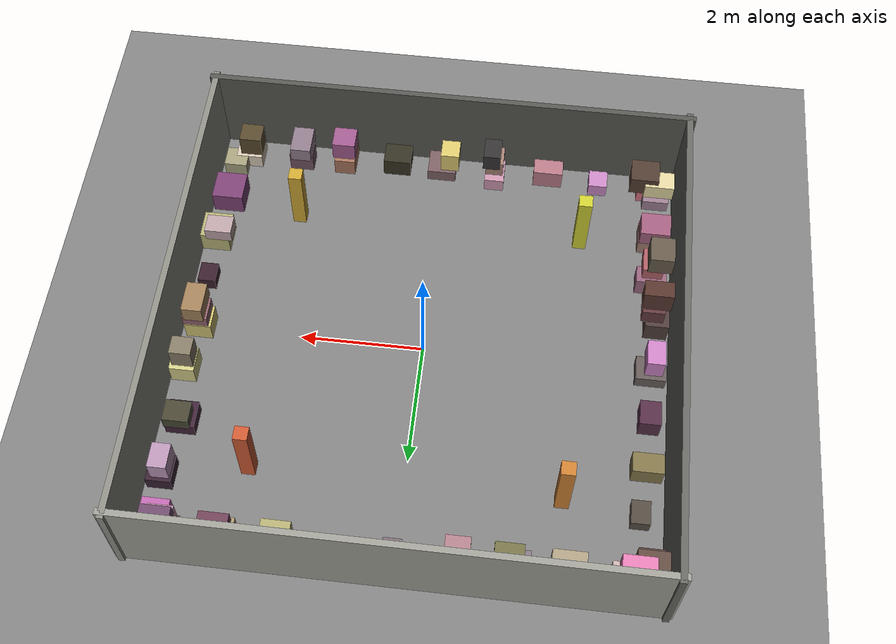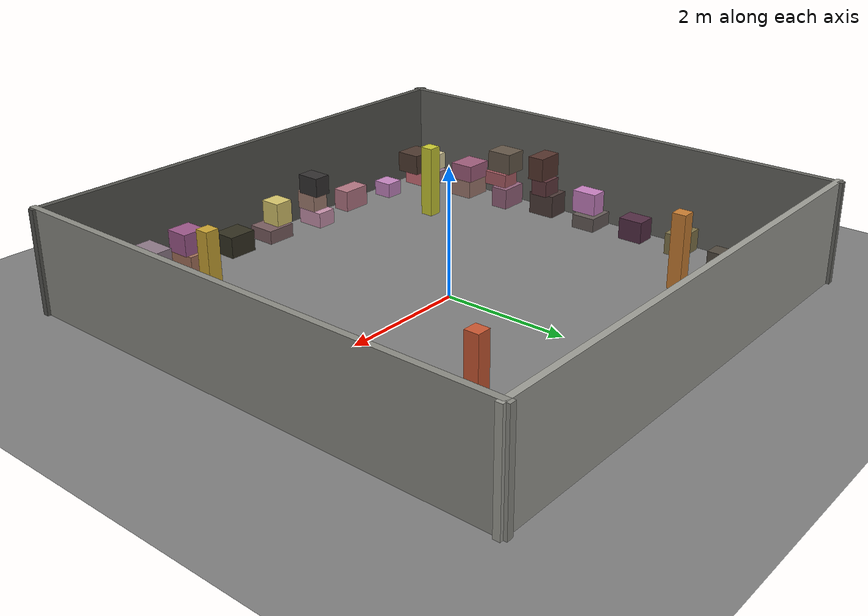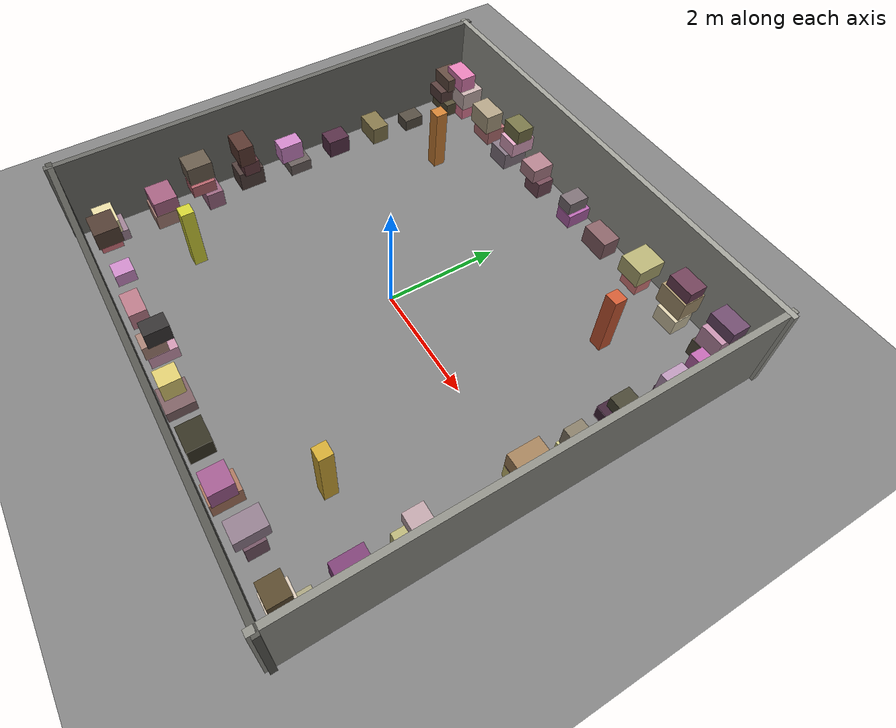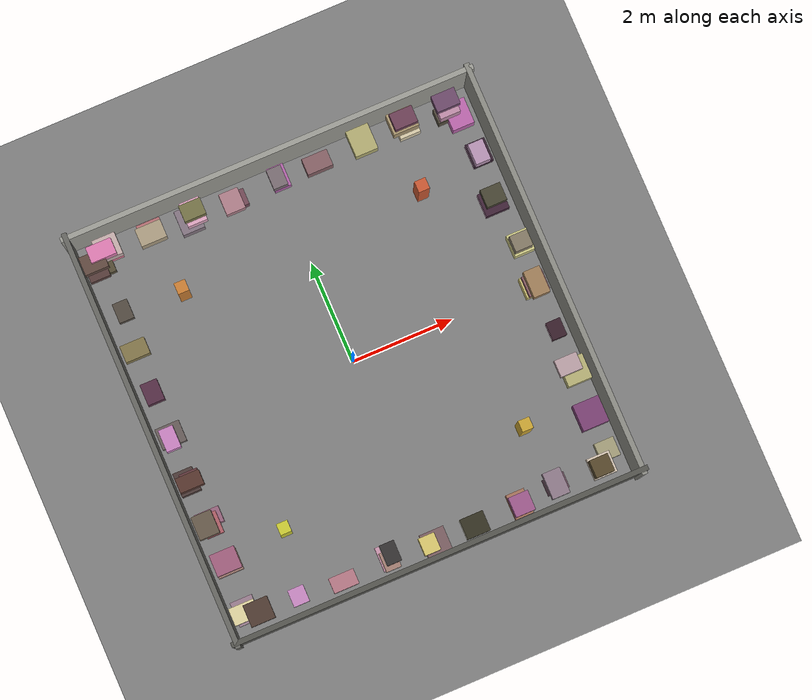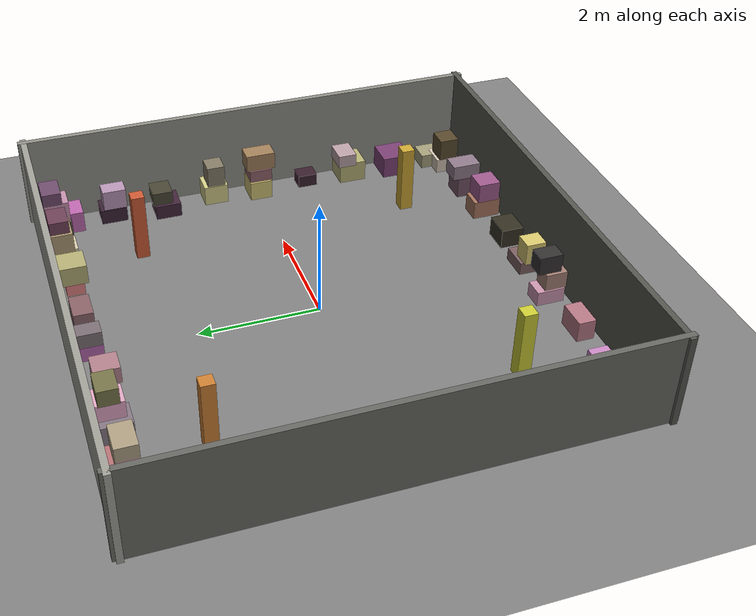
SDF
<?xml version="1.0"?>
<sdf version="1.6">
  <world name="rtabmap_textured_room">
    <plugin filename="gz-sim-physics-system" name="gz::sim::systems::Physics"/>
    <plugin filename="gz-sim-user-commands-system"
            name="gz::sim::systems::UserCommands"/>
    <plugin filename="gz-sim-scene-broadcaster-system"
            name="gz::sim::systems::SceneBroadcaster"/>
    <plugin filename="gz-sim-sensors-system" name="gz::sim::systems::Sensors">
      <render_engine>ogre2</render_engine>
    </plugin>
    <plugin filename="gz-sim-imu-system" name="gz::sim::systems::Imu"/>

    <physics name="3ms" type="ode">
      <max_step_size>0.003</max_step_size>
      <real_time_factor>1</real_time_factor>
    </physics>
    <scene><shadows>0</shadows></scene>

    <light name="sun" type="directional">
      <cast_shadows>0</cast_shadows>
      <pose>0 0 10 0 0 0</pose>
      <diffuse>0.9 0.9 0.9 1</diffuse>
      <specular>0.2 0.2 0.2 1</specular>
      <direction>-0.4 0.2 -0.9</direction>
    </light>

    <model name="ground_plane">
      <static>true</static>
      <link name="link">
        <collision name="c">
          <geometry><plane><normal>0 0 1</normal><size>40 40</size></plane></geometry>
        </collision>
        <visual name="v">
          <geometry><plane><normal>0 0 1</normal><size>40 40</size></plane></geometry>
          <material>
            <ambient>0.5 0.5 0.5 1</ambient>
            <diffuse>0.5 0.5 0.5 1</diffuse>
          </material>
        </visual>
      </link>
    </model>

    <model name="wall_0">
      <static>true</static>
      <pose>4.000 0.000 0.800 0 0 0</pose>
      <link name="link">
        <collision name="c">
          <geometry><box><size>0.100 8.200 1.600</size></box></geometry>
        </collision>
        <visual name="v">
          <geometry><box><size>0.100 8.200 1.600</size></box></geometry>
          <material>
            <ambient>0.55 0.55 0.52 1</ambient>
            <diffuse>0.55 0.55 0.52 1</diffuse>
            <specular>0.1 0.1 0.1 1</specular>
          </material>
        </visual>
      </link>
    </model>
    <model name="wall_1">
      <static>true</static>
      <pose>-4.000 0.000 0.800 0 0 0</pose>
      <link name="link">
        <collision name="c">
          <geometry><box><size>0.100 8.200 1.600</size></box></geometry>
        </collision>
        <visual name="v">
          <geometry><box><size>0.100 8.200 1.600</size></box></geometry>
          <material>
            <ambient>0.40 0.40 0.38 1</ambient>
            <diffuse>0.40 0.40 0.38 1</diffuse>
            <specular>0.1 0.1 0.1 1</specular>
          </material>
        </visual>
      </link>
    </model>
    <model name="wall_2">
      <static>true</static>
      <pose>0.000 4.000 0.800 0 0 0</pose>
      <link name="link">
        <collision name="c">
          <geometry><box><size>8.200 0.100 1.600</size></box></geometry>
        </collision>
        <visual name="v">
          <geometry><box><size>8.200 0.100 1.600</size></box></geometry>
          <material>
            <ambient>0.62 0.62 0.59 1</ambient>
            <diffuse>0.62 0.62 0.59 1</diffuse>
            <specular>0.1 0.1 0.1 1</specular>
          </material>
        </visual>
      </link>
    </model>
    <model name="wall_3">
      <static>true</static>
      <pose>0.000 -4.000 0.800 0 0 0</pose>
      <link name="link">
        <collision name="c">
          <geometry><box><size>8.200 0.100 1.600</size></box></geometry>
        </collision>
        <visual name="v">
          <geometry><box><size>8.200 0.100 1.600</size></box></geometry>
          <material>
            <ambient>0.33 0.33 0.31 1</ambient>
            <diffuse>0.33 0.33 0.31 1</diffuse>
            <specular>0.1 0.1 0.1 1</specular>
          </material>
        </visual>
      </link>
    </model>
    <model name="crate_0">
      <static>true</static>
      <pose>3.679 -3.373 0.130 0 0 0</pose>
      <link name="link">
        <collision name="c">
          <geometry><box><size>0.384 0.367 0.260</size></box></geometry>
        </collision>
        <visual name="v">
          <geometry><box><size>0.384 0.367 0.260</size></box></geometry>
          <material>
            <ambient>0.64 0.62 0.48 1</ambient>
            <diffuse>0.64 0.62 0.48 1</diffuse>
            <specular>0.1 0.1 0.1 1</specular>
          </material>
        </visual>
      </link>
    </model>
    <model name="crate_1">
      <static>true</static>
      <pose>3.654 -2.643 0.195 0 0 0</pose>
      <link name="link">
        <collision name="c">
          <geometry><box><size>0.518 0.518 0.389</size></box></geometry>
        </collision>
        <visual name="v">
          <geometry><box><size>0.518 0.518 0.389</size></box></geometry>
          <material>
            <ambient>0.48 0.25 0.45 1</ambient>
            <diffuse>0.48 0.25 0.45 1</diffuse>
            <specular>0.1 0.1 0.1 1</specular>
          </material>
        </visual>
      </link>
    </model>
    <model name="crate_2">
      <static>true</static>
      <pose>3.724 -1.795 0.191 0 0 0</pose>
      <link name="link">
        <collision name="c">
          <geometry><box><size>0.502 0.485 0.382</size></box></geometry>
        </collision>
        <visual name="v">
          <geometry><box><size>0.502 0.485 0.382</size></box></geometry>
          <material>
            <ambient>0.71 0.69 0.46 1</ambient>
            <diffuse>0.71 0.69 0.46 1</diffuse>
            <specular>0.1 0.1 0.1 1</specular>
          </material>
        </visual>
      </link>
    </model>
    <model name="crate_3">
      <static>true</static>
      <pose>3.614 -1.663 0.496 0 0 0</pose>
      <link name="link">
        <collision name="c">
          <geometry><box><size>0.441 0.331 0.229</size></box></geometry>
        </collision>
        <visual name="v">
          <geometry><box><size>0.441 0.331 0.229</size></box></geometry>
          <material>
            <ambient>0.73 0.63 0.65 1</ambient>
            <diffuse>0.73 0.63 0.65 1</diffuse>
            <specular>0.1 0.1 0.1 1</specular>
          </material>
        </visual>
      </link>
    </model>
    <model name="crate_4">
      <static>true</static>
      <pose>3.706 -0.942 0.114 0 0 0</pose>
      <link name="link">
        <collision name="c">
          <geometry><box><size>0.289 0.350 0.228</size></box></geometry>
        </collision>
        <visual name="v">
          <geometry><box><size>0.289 0.350 0.228</size></box></geometry>
          <material>
            <ambient>0.22 0.12 0.17 1</ambient>
            <diffuse>0.22 0.12 0.17 1</diffuse>
            <specular>0.1 0.1 0.1 1</specular>
          </material>
        </visual>
      </link>
    </model>
    <model name="crate_5">
      <static>true</static>
      <pose>3.643 -0.016 0.173 0 0 0</pose>
      <link name="link">
        <collision name="c">
          <geometry><box><size>0.437 0.399 0.347</size></box></geometry>
        </collision>
        <visual name="v">
          <geometry><box><size>0.437 0.399 0.347</size></box></geometry>
          <material>
            <ambient>0.81 0.76 0.45 1</ambient>
            <diffuse>0.81 0.76 0.45 1</diffuse>
            <specular>0.1 0.1 0.1 1</specular>
          </material>
        </visual>
      </link>
    </model>
    <model name="crate_6">
      <static>true</static>
      <pose>3.664 -0.026 0.458 0 0 0</pose>
      <link name="link">
        <collision name="c">
          <geometry><box><size>0.407 0.401 0.222</size></box></geometry>
        </collision>
        <visual name="v">
          <geometry><box><size>0.407 0.401 0.222</size></box></geometry>
          <material>
            <ambient>0.56 0.38 0.41 1</ambient>
            <diffuse>0.56 0.38 0.41 1</diffuse>
            <specular>0.1 0.1 0.1 1</specular>
          </material>
        </visual>
      </link>
    </model>
    <model name="crate_7">
      <static>true</static>
      <pose>3.660 -0.040 0.721 0 0 0</pose>
      <link name="link">
        <collision name="c">
          <geometry><box><size>0.325 0.520 0.304</size></box></geometry>
        </collision>
        <visual name="v">
          <geometry><box><size>0.325 0.520 0.304</size></box></geometry>
          <material>
            <ambient>0.63 0.50 0.35 1</ambient>
            <diffuse>0.63 0.50 0.35 1</diffuse>
            <specular>0.1 0.1 0.1 1</specular>
          </material>
        </visual>
      </link>
    </model>
    <model name="crate_8">
      <static>true</static>
      <pose>3.727 0.800 0.179 0 0 0</pose>
      <link name="link">
        <collision name="c">
          <geometry><box><size>0.403 0.426 0.358</size></box></geometry>
        </collision>
        <visual name="v">
          <geometry><box><size>0.403 0.426 0.358</size></box></geometry>
          <material>
            <ambient>0.82 0.80 0.53 1</ambient>
            <diffuse>0.82 0.80 0.53 1</diffuse>
            <specular>0.1 0.1 0.1 1</specular>
          </material>
        </visual>
      </link>
    </model>
    <model name="crate_9">
      <static>true</static>
      <pose>3.712 0.784 0.548 0 0 0</pose>
      <link name="link">
        <collision name="c">
          <geometry><box><size>0.347 0.313 0.379</size></box></geometry>
        </collision>
        <visual name="v">
          <geometry><box><size>0.347 0.313 0.379</size></box></geometry>
          <material>
            <ambient>0.52 0.48 0.40 1</ambient>
            <diffuse>0.52 0.48 0.40 1</diffuse>
            <specular>0.1 0.1 0.1 1</specular>
          </material>
        </visual>
      </link>
    </model>
    <model name="crate_10">
      <static>true</static>
      <pose>3.577 1.720 0.129 0 0 0</pose>
      <link name="link">
        <collision name="c">
          <geometry><box><size>0.468 0.451 0.257</size></box></geometry>
        </collision>
        <visual name="v">
          <geometry><box><size>0.468 0.451 0.257</size></box></geometry>
          <material>
            <ambient>0.25 0.14 0.22 1</ambient>
            <diffuse>0.25 0.14 0.22 1</diffuse>
            <specular>0.1 0.1 0.1 1</specular>
          </material>
        </visual>
      </link>
    </model>
    <model name="crate_11">
      <static>true</static>
      <pose>3.605 1.800 0.374 0 0 0</pose>
      <link name="link">
        <collision name="c">
          <geometry><box><size>0.401 0.354 0.234</size></box></geometry>
        </collision>
        <visual name="v">
          <geometry><box><size>0.401 0.354 0.234</size></box></geometry>
          <material>
            <ambient>0.28 0.27 0.20 1</ambient>
            <diffuse>0.28 0.27 0.20 1</diffuse>
            <specular>0.1 0.1 0.1 1</specular>
          </material>
        </visual>
      </link>
    </model>
    <model name="crate_12">
      <static>true</static>
      <pose>3.698 2.667 0.131 0 0 0</pose>
      <link name="link">
        <collision name="c">
          <geometry><box><size>0.393 0.456 0.263</size></box></geometry>
        </collision>
        <visual name="v">
          <geometry><box><size>0.393 0.456 0.263</size></box></geometry>
          <material>
            <ambient>0.22 0.13 0.20 1</ambient>
            <diffuse>0.22 0.13 0.20 1</diffuse>
            <specular>0.1 0.1 0.1 1</specular>
          </material>
        </visual>
      </link>
    </model>
    <model name="crate_13">
      <static>true</static>
      <pose>3.671 2.630 0.443 0 0 0</pose>
      <link name="link">
        <collision name="c">
          <geometry><box><size>0.294 0.407 0.361</size></box></geometry>
        </collision>
        <visual name="v">
          <geometry><box><size>0.294 0.407 0.361</size></box></geometry>
          <material>
            <ambient>0.72 0.58 0.71 1</ambient>
            <diffuse>0.72 0.58 0.71 1</diffuse>
            <specular>0.1 0.1 0.1 1</specular>
          </material>
        </visual>
      </link>
    </model>
    <model name="crate_14">
      <static>true</static>
      <pose>3.618 3.468 0.193 0 0 0</pose>
      <link name="link">
        <collision name="c">
          <geometry><box><size>0.431 0.511 0.386</size></box></geometry>
        </collision>
        <visual name="v">
          <geometry><box><size>0.431 0.511 0.386</size></box></geometry>
          <material>
            <ambient>0.74 0.40 0.68 1</ambient>
            <diffuse>0.74 0.40 0.68 1</diffuse>
            <specular>0.1 0.1 0.1 1</specular>
          </material>
        </visual>
      </link>
    </model>
    <model name="crate_15">
      <static>true</static>
      <pose>-3.650 -3.486 0.113 0 0 0</pose>
      <link name="link">
        <collision name="c">
          <geometry><box><size>0.433 0.479 0.225</size></box></geometry>
        </collision>
        <visual name="v">
          <geometry><box><size>0.433 0.479 0.225</size></box></geometry>
          <material>
            <ambient>0.60 0.49 0.56 1</ambient>
            <diffuse>0.60 0.49 0.56 1</diffuse>
            <specular>0.1 0.1 0.1 1</specular>
          </material>
        </visual>
      </link>
    </model>
    <model name="crate_16">
      <static>true</static>
      <pose>-3.681 -3.514 0.368 0 0 0</pose>
      <link name="link">
        <collision name="c">
          <geometry><box><size>0.496 0.340 0.285</size></box></geometry>
        </collision>
        <visual name="v">
          <geometry><box><size>0.496 0.340 0.285</size></box></geometry>
          <material>
            <ambient>0.88 0.83 0.63 1</ambient>
            <diffuse>0.88 0.83 0.63 1</diffuse>
            <specular>0.1 0.1 0.1 1</specular>
          </material>
        </visual>
      </link>
    </model>
    <model name="crate_17">
      <static>true</static>
      <pose>-3.623 -2.543 0.152 0 0 0</pose>
      <link name="link">
        <collision name="c">
          <geometry><box><size>0.493 0.433 0.304</size></box></geometry>
        </collision>
        <visual name="v">
          <geometry><box><size>0.493 0.433 0.304</size></box></geometry>
          <material>
            <ambient>0.63 0.48 0.44 1</ambient>
            <diffuse>0.63 0.48 0.44 1</diffuse>
            <specular>0.1 0.1 0.1 1</specular>
          </material>
        </visual>
      </link>
    </model>
    <model name="crate_18">
      <static>true</static>
      <pose>-3.628 -2.518 0.447 0 0 0</pose>
      <link name="link">
        <collision name="c">
          <geometry><box><size>0.491 0.423 0.285</size></box></geometry>
        </collision>
        <visual name="v">
          <geometry><box><size>0.491 0.423 0.285</size></box></geometry>
          <material>
            <ambient>0.63 0.37 0.49 1</ambient>
            <diffuse>0.63 0.37 0.49 1</diffuse>
            <specular>0.1 0.1 0.1 1</specular>
          </material>
        </visual>
      </link>
    </model>
    <model name="crate_19">
      <static>true</static>
      <pose>-3.607 -1.655 0.175 0 0 0</pose>
      <link name="link">
        <collision name="c">
          <geometry><box><size>0.488 0.304 0.350</size></box></geometry>
        </collision>
        <visual name="v">
          <geometry><box><size>0.488 0.304 0.350</size></box></geometry>
          <material>
            <ambient>0.59 0.39 0.49 1</ambient>
            <diffuse>0.59 0.39 0.49 1</diffuse>
            <specular>0.1 0.1 0.1 1</specular>
          </material>
        </visual>
      </link>
    </model>
    <model name="crate_20">
      <static>true</static>
      <pose>-3.607 -1.796 0.465 0 0 0</pose>
      <link name="link">
        <collision name="c">
          <geometry><box><size>0.334 0.430 0.229</size></box></geometry>
        </collision>
        <visual name="v">
          <geometry><box><size>0.334 0.430 0.229</size></box></geometry>
          <material>
            <ambient>0.68 0.37 0.40 1</ambient>
            <diffuse>0.68 0.37 0.40 1</diffuse>
            <specular>0.1 0.1 0.1 1</specular>
          </material>
        </visual>
      </link>
    </model>
    <model name="crate_21">
      <static>true</static>
      <pose>-3.706 -1.778 0.758 0 0 0</pose>
      <link name="link">
        <collision name="c">
          <geometry><box><size>0.393 0.452 0.358</size></box></geometry>
        </collision>
        <visual name="v">
          <geometry><box><size>0.393 0.452 0.358</size></box></geometry>
          <material>
            <ambient>0.40 0.35 0.29 1</ambient>
            <diffuse>0.40 0.35 0.29 1</diffuse>
            <specular>0.1 0.1 0.1 1</specular>
          </material>
        </visual>
      </link>
    </model>
    <model name="crate_22">
      <static>true</static>
      <pose>-3.720 -0.876 0.189 0 0 0</pose>
      <link name="link">
        <collision name="c">
          <geometry><box><size>0.384 0.467 0.379</size></box></geometry>
        </collision>
        <visual name="v">
          <geometry><box><size>0.384 0.467 0.379</size></box></geometry>
          <material>
            <ambient>0.30 0.23 0.22 1</ambient>
            <diffuse>0.30 0.23 0.22 1</diffuse>
            <specular>0.1 0.1 0.1 1</specular>
          </material>
        </visual>
      </link>
    </model>
    <model name="crate_23">
      <static>true</static>
      <pose>-3.628 -0.874 0.513 0 0 0</pose>
      <link name="link">
        <collision name="c">
          <geometry><box><size>0.362 0.297 0.269</size></box></geometry>
        </collision>
        <visual name="v">
          <geometry><box><size>0.362 0.297 0.269</size></box></geometry>
          <material>
            <ambient>0.38 0.22 0.24 1</ambient>
            <diffuse>0.38 0.22 0.24 1</diffuse>
            <specular>0.1 0.1 0.1 1</specular>
          </material>
        </visual>
      </link>
    </model>
    <model name="crate_24">
      <static>true</static>
      <pose>-3.656 -0.935 0.846 0 0 0</pose>
      <link name="link">
        <collision name="c">
          <geometry><box><size>0.471 0.285 0.397</size></box></geometry>
        </collision>
        <visual name="v">
          <geometry><box><size>0.471 0.285 0.397</size></box></geometry>
          <material>
            <ambient>0.34 0.21 0.18 1</ambient>
            <diffuse>0.34 0.21 0.18 1</diffuse>
            <specular>0.1 0.1 0.1 1</specular>
          </material>
        </visual>
      </link>
    </model>
    <model name="crate_25">
      <static>true</static>
      <pose>-3.662 0.053 0.115 0 0 0</pose>
      <link name="link">
        <collision name="c">
          <geometry><box><size>0.482 0.412 0.230</size></box></geometry>
        </collision>
        <visual name="v">
          <geometry><box><size>0.482 0.412 0.230</size></box></geometry>
          <material>
            <ambient>0.40 0.36 0.35 1</ambient>
            <diffuse>0.40 0.36 0.35 1</diffuse>
            <specular>0.1 0.1 0.1 1</specular>
          </material>
        </visual>
      </link>
    </model>
    <model name="crate_26">
      <static>true</static>
      <pose>-3.698 -0.034 0.414 0 0 0</pose>
      <link name="link">
        <collision name="c">
          <geometry><box><size>0.285 0.429 0.368</size></box></geometry>
        </collision>
        <visual name="v">
          <geometry><box><size>0.285 0.429 0.368</size></box></geometry>
          <material>
            <ambient>0.79 0.51 0.76 1</ambient>
            <diffuse>0.79 0.51 0.76 1</diffuse>
            <specular>0.1 0.1 0.1 1</specular>
          </material>
        </visual>
      </link>
    </model>
    <model name="crate_27">
      <static>true</static>
      <pose>-3.663 0.912 0.179 0 0 0</pose>
      <link name="link">
        <collision name="c">
          <geometry><box><size>0.335 0.411 0.358</size></box></geometry>
        </collision>
        <visual name="v">
          <geometry><box><size>0.335 0.411 0.358</size></box></geometry>
          <material>
            <ambient>0.33 0.18 0.27 1</ambient>
            <diffuse>0.33 0.18 0.27 1</diffuse>
            <specular>0.1 0.1 0.1 1</specular>
          </material>
        </visual>
      </link>
    </model>
    <model name="crate_28">
      <static>true</static>
      <pose>-3.654 1.766 0.175 0 0 0</pose>
      <link name="link">
        <collision name="c">
          <geometry><box><size>0.487 0.326 0.350</size></box></geometry>
        </collision>
        <visual name="v">
          <geometry><box><size>0.487 0.326 0.350</size></box></geometry>
          <material>
            <ambient>0.51 0.46 0.29 1</ambient>
            <diffuse>0.51 0.46 0.29 1</diffuse>
            <specular>0.1 0.1 0.1 1</specular>
          </material>
        </visual>
      </link>
    </model>
    <model name="crate_29">
      <static>true</static>
      <pose>-3.578 2.533 0.116 0 0 0</pose>
      <link name="link">
        <collision name="c">
          <geometry><box><size>0.296 0.380 0.232</size></box></geometry>
        </collision>
        <visual name="v">
          <geometry><box><size>0.296 0.380 0.232</size></box></geometry>
          <material>
            <ambient>0.32 0.29 0.25 1</ambient>
            <diffuse>0.32 0.29 0.25 1</diffuse>
            <specular>0.1 0.1 0.1 1</specular>
          </material>
        </visual>
      </link>
    </model>
    <model name="crate_30">
      <static>true</static>
      <pose>-3.655 3.476 0.132 0 0 0</pose>
      <link name="link">
        <collision name="c">
          <geometry><box><size>0.519 0.398 0.263</size></box></geometry>
        </collision>
        <visual name="v">
          <geometry><box><size>0.519 0.398 0.263</size></box></geometry>
          <material>
            <ambient>0.33 0.30 0.21 1</ambient>
            <diffuse>0.33 0.30 0.21 1</diffuse>
            <specular>0.1 0.1 0.1 1</specular>
          </material>
        </visual>
      </link>
    </model>
    <model name="crate_31">
      <static>true</static>
      <pose>-3.721 3.394 0.389 0 0 0</pose>
      <link name="link">
        <collision name="c">
          <geometry><box><size>0.392 0.372 0.252</size></box></geometry>
        </collision>
        <visual name="v">
          <geometry><box><size>0.392 0.372 0.252</size></box></geometry>
          <material>
            <ambient>0.34 0.24 0.23 1</ambient>
            <diffuse>0.34 0.24 0.23 1</diffuse>
            <specular>0.1 0.1 0.1 1</specular>
          </material>
        </visual>
      </link>
    </model>
    <model name="crate_32">
      <static>true</static>
      <pose>-3.723 3.517 0.647 0 0 0</pose>
      <link name="link">
        <collision name="c">
          <geometry><box><size>0.479 0.355 0.263</size></box></geometry>
        </collision>
        <visual name="v">
          <geometry><box><size>0.479 0.355 0.263</size></box></geometry>
          <material>
            <ambient>0.38 0.29 0.25 1</ambient>
            <diffuse>0.38 0.29 0.25 1</diffuse>
            <specular>0.1 0.1 0.1 1</specular>
          </material>
        </visual>
      </link>
    </model>
    <model name="crate_33">
      <static>true</static>
      <pose>-3.391 3.719 0.119 0 0 0</pose>
      <link name="link">
        <collision name="c">
          <geometry><box><size>0.452 0.453 0.239</size></box></geometry>
        </collision>
        <visual name="v">
          <geometry><box><size>0.452 0.453 0.239</size></box></geometry>
          <material>
            <ambient>0.90 0.49 0.60 1</ambient>
            <diffuse>0.90 0.49 0.60 1</diffuse>
            <specular>0.1 0.1 0.1 1</specular>
          </material>
        </visual>
      </link>
    </model>
    <model name="crate_34">
      <static>true</static>
      <pose>-3.384 3.703 0.420 0 0 0</pose>
      <link name="link">
        <collision name="c">
          <geometry><box><size>0.459 0.429 0.362</size></box></geometry>
        </collision>
        <visual name="v">
          <geometry><box><size>0.459 0.429 0.362</size></box></geometry>
          <material>
            <ambient>0.78 0.69 0.68 1</ambient>
            <diffuse>0.78 0.69 0.68 1</diffuse>
            <specular>0.1 0.1 0.1 1</specular>
          </material>
        </visual>
      </link>
    </model>
    <model name="crate_35">
      <static>true</static>
      <pose>-3.505 3.646 0.754 0 0 0</pose>
      <link name="link">
        <collision name="c">
          <geometry><box><size>0.500 0.310 0.306</size></box></geometry>
        </collision>
        <visual name="v">
          <geometry><box><size>0.500 0.310 0.306</size></box></geometry>
          <material>
            <ambient>0.88 0.49 0.70 1</ambient>
            <diffuse>0.88 0.49 0.70 1</diffuse>
            <specular>0.1 0.1 0.1 1</specular>
          </material>
        </visual>
      </link>
    </model>
    <model name="crate_36">
      <static>true</static>
      <pose>-2.512 3.700 0.148 0 0 0</pose>
      <link name="link">
        <collision name="c">
          <geometry><box><size>0.465 0.393 0.295</size></box></geometry>
        </collision>
        <visual name="v">
          <geometry><box><size>0.465 0.393 0.295</size></box></geometry>
          <material>
            <ambient>0.71 0.44 0.45 1</ambient>
            <diffuse>0.71 0.44 0.45 1</diffuse>
            <specular>0.1 0.1 0.1 1</specular>
          </material>
        </visual>
      </link>
    </model>
    <model name="crate_37">
      <static>true</static>
      <pose>-2.534 3.614 0.491 0 0 0</pose>
      <link name="link">
        <collision name="c">
          <geometry><box><size>0.508 0.348 0.393</size></box></geometry>
        </collision>
        <visual name="v">
          <geometry><box><size>0.508 0.348 0.393</size></box></geometry>
          <material>
            <ambient>0.68 0.62 0.51 1</ambient>
            <diffuse>0.68 0.62 0.51 1</diffuse>
            <specular>0.1 0.1 0.1 1</specular>
          </material>
        </visual>
      </link>
    </model>
    <model name="crate_38">
      <static>true</static>
      <pose>-1.779 3.619 0.173 0 0 0</pose>
      <link name="link">
        <collision name="c">
          <geometry><box><size>0.435 0.482 0.345</size></box></geometry>
        </collision>
        <visual name="v">
          <geometry><box><size>0.435 0.482 0.345</size></box></geometry>
          <material>
            <ambient>0.52 0.46 0.51 1</ambient>
            <diffuse>0.52 0.46 0.51 1</diffuse>
            <specular>0.1 0.1 0.1 1</specular>
          </material>
        </visual>
      </link>
    </model>
    <model name="crate_39">
      <static>true</static>
      <pose>-1.659 3.681 0.493 0 0 0</pose>
      <link name="link">
        <collision name="c">
          <geometry><box><size>0.385 0.465 0.296</size></box></geometry>
        </collision>
        <visual name="v">
          <geometry><box><size>0.385 0.465 0.296</size></box></geometry>
          <material>
            <ambient>0.88 0.65 0.76 1</ambient>
            <diffuse>0.88 0.65 0.76 1</diffuse>
            <specular>0.1 0.1 0.1 1</specular>
          </material>
        </visual>
      </link>
    </model>
    <model name="crate_40">
      <static>true</static>
      <pose>-1.662 3.679 0.782 0 0 0</pose>
      <link name="link">
        <collision name="c">
          <geometry><box><size>0.429 0.321 0.281</size></box></geometry>
        </collision>
        <visual name="v">
          <geometry><box><size>0.429 0.321 0.281</size></box></geometry>
          <material>
            <ambient>0.46 0.45 0.28 1</ambient>
            <diffuse>0.46 0.45 0.28 1</diffuse>
            <specular>0.1 0.1 0.1 1</specular>
          </material>
        </visual>
      </link>
    </model>
    <model name="crate_41">
      <static>true</static>
      <pose>-0.818 3.613 0.167 0 0 0</pose>
      <link name="link">
        <collision name="c">
          <geometry><box><size>0.376 0.316 0.334</size></box></geometry>
        </collision>
        <visual name="v">
          <geometry><box><size>0.376 0.316 0.334</size></box></geometry>
          <material>
            <ambient>0.45 0.29 0.34 1</ambient>
            <diffuse>0.45 0.29 0.34 1</diffuse>
            <specular>0.1 0.1 0.1 1</specular>
          </material>
        </visual>
      </link>
    </model>
    <model name="crate_42">
      <static>true</static>
      <pose>-0.918 3.582 0.476 0 0 0</pose>
      <link name="link">
        <collision name="c">
          <geometry><box><size>0.378 0.411 0.283</size></box></geometry>
        </collision>
        <visual name="v">
          <geometry><box><size>0.378 0.411 0.283</size></box></geometry>
          <material>
            <ambient>0.69 0.50 0.54 1</ambient>
            <diffuse>0.69 0.50 0.54 1</diffuse>
            <specular>0.1 0.1 0.1 1</specular>
          </material>
        </visual>
      </link>
    </model>
    <model name="crate_43">
      <static>true</static>
      <pose>0.069 3.706 0.137 0 0 0</pose>
      <link name="link">
        <collision name="c">
          <geometry><box><size>0.327 0.443 0.275</size></box></geometry>
        </collision>
        <visual name="v">
          <geometry><box><size>0.327 0.443 0.275</size></box></geometry>
          <material>
            <ambient>0.70 0.39 0.67 1</ambient>
            <diffuse>0.70 0.39 0.67 1</diffuse>
            <specular>0.1 0.1 0.1 1</specular>
          </material>
        </visual>
      </link>
    </model>
    <model name="crate_44">
      <static>true</static>
      <pose>0.030 3.681 0.400 0 0 0</pose>
      <link name="link">
        <collision name="c">
          <geometry><box><size>0.285 0.387 0.251</size></box></geometry>
        </collision>
        <visual name="v">
          <geometry><box><size>0.285 0.387 0.251</size></box></geometry>
          <material>
            <ambient>0.48 0.43 0.45 1</ambient>
            <diffuse>0.48 0.43 0.45 1</diffuse>
            <specular>0.1 0.1 0.1 1</specular>
          </material>
        </visual>
      </link>
    </model>
    <model name="crate_45">
      <static>true</static>
      <pose>0.837 3.672 0.186 0 0 0</pose>
      <link name="link">
        <collision name="c">
          <geometry><box><size>0.506 0.322 0.371</size></box></geometry>
        </collision>
        <visual name="v">
          <geometry><box><size>0.506 0.322 0.371</size></box></geometry>
          <material>
            <ambient>0.53 0.38 0.40 1</ambient>
            <diffuse>0.53 0.38 0.40 1</diffuse>
            <specular>0.1 0.1 0.1 1</specular>
          </material>
        </visual>
      </link>
    </model>
    <model name="crate_46">
      <static>true</static>
      <pose>1.778 3.656 0.129 0 0 0</pose>
      <link name="link">
        <collision name="c">
          <geometry><box><size>0.355 0.305 0.259</size></box></geometry>
        </collision>
        <visual name="v">
          <geometry><box><size>0.355 0.305 0.259</size></box></geometry>
          <material>
            <ambient>0.87 0.50 0.50 1</ambient>
            <diffuse>0.87 0.50 0.50 1</diffuse>
            <specular>0.1 0.1 0.1 1</specular>
          </material>
        </visual>
      </link>
    </model>
    <model name="crate_47">
      <static>true</static>
      <pose>1.749 3.697 0.430 0 0 0</pose>
      <link name="link">
        <collision name="c">
          <geometry><box><size>0.446 0.517 0.342</size></box></geometry>
        </collision>
        <visual name="v">
          <geometry><box><size>0.446 0.517 0.342</size></box></geometry>
          <material>
            <ambient>0.70 0.68 0.45 1</ambient>
            <diffuse>0.70 0.68 0.45 1</diffuse>
            <specular>0.1 0.1 0.1 1</specular>
          </material>
        </visual>
      </link>
    </model>
    <model name="crate_48">
      <static>true</static>
      <pose>2.646 3.635 0.159 0 0 0</pose>
      <link name="link">
        <collision name="c">
          <geometry><box><size>0.402 0.348 0.317</size></box></geometry>
        </collision>
        <visual name="v">
          <geometry><box><size>0.402 0.348 0.317</size></box></geometry>
          <material>
            <ambient>0.85 0.80 0.67 1</ambient>
            <diffuse>0.85 0.80 0.67 1</diffuse>
            <specular>0.1 0.1 0.1 1</specular>
          </material>
        </visual>
      </link>
    </model>
    <model name="crate_49">
      <static>true</static>
      <pose>2.581 3.725 0.514 0 0 0</pose>
      <link name="link">
        <collision name="c">
          <geometry><box><size>0.508 0.405 0.393</size></box></geometry>
        </collision>
        <visual name="v">
          <geometry><box><size>0.508 0.405 0.393</size></box></geometry>
          <material>
            <ambient>0.67 0.59 0.44 1</ambient>
            <diffuse>0.67 0.59 0.44 1</diffuse>
            <specular>0.1 0.1 0.1 1</specular>
          </material>
        </visual>
      </link>
    </model>
    <model name="crate_50">
      <static>true</static>
      <pose>2.599 3.723 0.825 0 0 0</pose>
      <link name="link">
        <collision name="c">
          <geometry><box><size>0.451 0.325 0.230</size></box></geometry>
        </collision>
        <visual name="v">
          <geometry><box><size>0.451 0.325 0.230</size></box></geometry>
          <material>
            <ambient>0.43 0.25 0.34 1</ambient>
            <diffuse>0.43 0.25 0.34 1</diffuse>
            <specular>0.1 0.1 0.1 1</specular>
          </material>
        </visual>
      </link>
    </model>
    <model name="crate_51">
      <static>true</static>
      <pose>3.411 3.586 0.177 0 0 0</pose>
      <link name="link">
        <collision name="c">
          <geometry><box><size>0.404 0.288 0.354</size></box></geometry>
        </collision>
        <visual name="v">
          <geometry><box><size>0.404 0.288 0.354</size></box></geometry>
          <material>
            <ambient>0.34 0.31 0.25 1</ambient>
            <diffuse>0.34 0.31 0.25 1</diffuse>
            <specular>0.1 0.1 0.1 1</specular>
          </material>
        </visual>
      </link>
    </model>
    <model name="crate_52">
      <static>true</static>
      <pose>3.443 3.664 0.547 0 0 0</pose>
      <link name="link">
        <collision name="c">
          <geometry><box><size>0.398 0.421 0.386</size></box></geometry>
        </collision>
        <visual name="v">
          <geometry><box><size>0.398 0.421 0.386</size></box></geometry>
          <material>
            <ambient>0.76 0.56 0.67 1</ambient>
            <diffuse>0.76 0.56 0.67 1</diffuse>
            <specular>0.1 0.1 0.1 1</specular>
          </material>
        </visual>
      </link>
    </model>
    <model name="crate_53">
      <static>true</static>
      <pose>3.448 3.723 0.851 0 0 0</pose>
      <link name="link">
        <collision name="c">
          <geometry><box><size>0.461 0.324 0.222</size></box></geometry>
        </collision>
        <visual name="v">
          <geometry><box><size>0.461 0.324 0.222</size></box></geometry>
          <material>
            <ambient>0.43 0.29 0.42 1</ambient>
            <diffuse>0.43 0.29 0.42 1</diffuse>
            <specular>0.1 0.1 0.1 1</specular>
          </material>
        </visual>
      </link>
    </model>
    <model name="crate_54">
      <static>true</static>
      <pose>-3.471 -3.604 0.130 0 0 0</pose>
      <link name="link">
        <collision name="c">
          <geometry><box><size>0.290 0.370 0.261</size></box></geometry>
        </collision>
        <visual name="v">
          <geometry><box><size>0.290 0.370 0.261</size></box></geometry>
          <material>
            <ambient>0.82 0.44 0.48 1</ambient>
            <diffuse>0.82 0.44 0.48 1</diffuse>
            <specular>0.1 0.1 0.1 1</specular>
          </material>
        </visual>
      </link>
    </model>
    <model name="crate_55">
      <static>true</static>
      <pose>-3.419 -3.609 0.436 0 0 0</pose>
      <link name="link">
        <collision name="c">
          <geometry><box><size>0.478 0.432 0.351</size></box></geometry>
        </collision>
        <visual name="v">
          <geometry><box><size>0.478 0.432 0.351</size></box></geometry>
          <material>
            <ambient>0.31 0.23 0.19 1</ambient>
            <diffuse>0.31 0.23 0.19 1</diffuse>
            <specular>0.1 0.1 0.1 1</specular>
          </material>
        </visual>
      </link>
    </model>
    <model name="crate_56">
      <static>true</static>
      <pose>-2.645 -3.620 0.126 0 0 0</pose>
      <link name="link">
        <collision name="c">
          <geometry><box><size>0.313 0.332 0.252</size></box></geometry>
        </collision>
        <visual name="v">
          <geometry><box><size>0.313 0.332 0.252</size></box></geometry>
          <material>
            <ambient>0.78 0.53 0.76 1</ambient>
            <diffuse>0.78 0.53 0.76 1</diffuse>
            <specular>0.1 0.1 0.1 1</specular>
          </material>
        </visual>
      </link>
    </model>
    <model name="crate_57">
      <static>true</static>
      <pose>-1.770 -3.699 0.178 0 0 0</pose>
      <link name="link">
        <collision name="c">
          <geometry><box><size>0.497 0.296 0.356</size></box></geometry>
        </collision>
        <visual name="v">
          <geometry><box><size>0.497 0.296 0.356</size></box></geometry>
          <material>
            <ambient>0.71 0.47 0.52 1</ambient>
            <diffuse>0.71 0.47 0.52 1</diffuse>
            <specular>0.1 0.1 0.1 1</specular>
          </material>
        </visual>
      </link>
    </model>
    <model name="crate_58">
      <static>true</static>
      <pose>-0.847 -3.603 0.127 0 0 0</pose>
      <link name="link">
        <collision name="c">
          <geometry><box><size>0.331 0.477 0.255</size></box></geometry>
        </collision>
        <visual name="v">
          <geometry><box><size>0.331 0.477 0.255</size></box></geometry>
          <material>
            <ambient>0.79 0.58 0.68 1</ambient>
            <diffuse>0.79 0.58 0.68 1</diffuse>
            <specular>0.1 0.1 0.1 1</specular>
          </material>
        </visual>
      </link>
    </model>
    <model name="crate_59">
      <static>true</static>
      <pose>-0.836 -3.684 0.403 0 0 0</pose>
      <link name="link">
        <collision name="c">
          <geometry><box><size>0.299 0.372 0.297</size></box></geometry>
        </collision>
        <visual name="v">
          <geometry><box><size>0.299 0.372 0.297</size></box></geometry>
          <material>
            <ambient>0.64 0.50 0.45 1</ambient>
            <diffuse>0.64 0.50 0.45 1</diffuse>
            <specular>0.1 0.1 0.1 1</specular>
          </material>
        </visual>
      </link>
    </model>
    <model name="crate_60">
      <static>true</static>
      <pose>-0.787 -3.576 0.713 0 0 0</pose>
      <link name="link">
        <collision name="c">
          <geometry><box><size>0.289 0.401 0.322</size></box></geometry>
        </collision>
        <visual name="v">
          <geometry><box><size>0.289 0.401 0.322</size></box></geometry>
          <material>
            <ambient>0.20 0.19 0.19 1</ambient>
            <diffuse>0.20 0.19 0.19 1</diffuse>
            <specular>0.1 0.1 0.1 1</specular>
          </material>
        </visual>
      </link>
    </model>
    <model name="crate_61">
      <static>true</static>
      <pose>0.079 -3.704 0.110 0 0 0</pose>
      <link name="link">
        <collision name="c">
          <geometry><box><size>0.482 0.464 0.221</size></box></geometry>
        </collision>
        <visual name="v">
          <geometry><box><size>0.482 0.464 0.221</size></box></geometry>
          <material>
            <ambient>0.48 0.37 0.38 1</ambient>
            <diffuse>0.48 0.37 0.38 1</diffuse>
            <specular>0.1 0.1 0.1 1</specular>
          </material>
        </visual>
      </link>
    </model>
    <model name="crate_62">
      <static>true</static>
      <pose>-0.056 -3.701 0.414 0 0 0</pose>
      <link name="link">
        <collision name="c">
          <geometry><box><size>0.314 0.342 0.386</size></box></geometry>
        </collision>
        <visual name="v">
          <geometry><box><size>0.314 0.342 0.386</size></box></geometry>
          <material>
            <ambient>0.85 0.78 0.43 1</ambient>
            <diffuse>0.85 0.78 0.43 1</diffuse>
            <specular>0.1 0.1 0.1 1</specular>
          </material>
        </visual>
      </link>
    </model>
    <model name="crate_63">
      <static>true</static>
      <pose>0.866 -3.701 0.173 0 0 0</pose>
      <link name="link">
        <collision name="c">
          <geometry><box><size>0.465 0.396 0.346</size></box></geometry>
        </collision>
        <visual name="v">
          <geometry><box><size>0.465 0.396 0.346</size></box></geometry>
          <material>
            <ambient>0.20 0.19 0.13 1</ambient>
            <diffuse>0.20 0.19 0.13 1</diffuse>
            <specular>0.1 0.1 0.1 1</specular>
          </material>
        </visual>
      </link>
    </model>
    <model name="crate_64">
      <static>true</static>
      <pose>1.781 -3.668 0.164 0 0 0</pose>
      <link name="link">
        <collision name="c">
          <geometry><box><size>0.356 0.488 0.328</size></box></geometry>
        </collision>
        <visual name="v">
          <geometry><box><size>0.356 0.488 0.328</size></box></geometry>
          <material>
            <ambient>0.65 0.45 0.36 1</ambient>
            <diffuse>0.65 0.45 0.36 1</diffuse>
            <specular>0.1 0.1 0.1 1</specular>
          </material>
        </visual>
      </link>
    </model>
    <model name="crate_65">
      <static>true</static>
      <pose>1.796 -3.687 0.503 0 0 0</pose>
      <link name="link">
        <collision name="c">
          <geometry><box><size>0.390 0.388 0.350</size></box></geometry>
        </collision>
        <visual name="v">
          <geometry><box><size>0.390 0.388 0.350</size></box></geometry>
          <material>
            <ambient>0.62 0.35 0.55 1</ambient>
            <diffuse>0.62 0.35 0.55 1</diffuse>
            <specular>0.1 0.1 0.1 1</specular>
          </material>
        </visual>
      </link>
    </model>
    <model name="crate_66">
      <static>true</static>
      <pose>2.546 -3.587 0.185 0 0 0</pose>
      <link name="link">
        <collision name="c">
          <geometry><box><size>0.407 0.315 0.370</size></box></geometry>
        </collision>
        <visual name="v">
          <geometry><box><size>0.407 0.315 0.370</size></box></geometry>
          <material>
            <ambient>0.44 0.32 0.38 1</ambient>
            <diffuse>0.44 0.32 0.38 1</diffuse>
            <specular>0.1 0.1 0.1 1</specular>
          </material>
        </visual>
      </link>
    </model>
    <model name="crate_67">
      <static>true</static>
      <pose>2.529 -3.587 0.504 0 0 0</pose>
      <link name="link">
        <collision name="c">
          <geometry><box><size>0.346 0.508 0.267</size></box></geometry>
        </collision>
        <visual name="v">
          <geometry><box><size>0.346 0.508 0.267</size></box></geometry>
          <material>
            <ambient>0.56 0.48 0.54 1</ambient>
            <diffuse>0.56 0.48 0.54 1</diffuse>
            <specular>0.1 0.1 0.1 1</specular>
          </material>
        </visual>
      </link>
    </model>
    <model name="crate_68">
      <static>true</static>
      <pose>3.470 -3.606 0.131 0 0 0</pose>
      <link name="link">
        <collision name="c">
          <geometry><box><size>0.444 0.420 0.263</size></box></geometry>
        </collision>
        <visual name="v">
          <geometry><box><size>0.444 0.420 0.263</size></box></geometry>
          <material>
            <ambient>0.83 0.77 0.70 1</ambient>
            <diffuse>0.83 0.77 0.70 1</diffuse>
            <specular>0.1 0.1 0.1 1</specular>
          </material>
        </visual>
      </link>
    </model>
    <model name="crate_69">
      <static>true</static>
      <pose>3.431 -3.623 0.458 0 0 0</pose>
      <link name="link">
        <collision name="c">
          <geometry><box><size>0.368 0.348 0.390</size></box></geometry>
        </collision>
        <visual name="v">
          <geometry><box><size>0.368 0.348 0.390</size></box></geometry>
          <material>
            <ambient>0.34 0.28 0.17 1</ambient>
            <diffuse>0.34 0.28 0.17 1</diffuse>
            <specular>0.1 0.1 0.1 1</specular>
          </material>
        </visual>
      </link>
    </model>
    <model name="pillar_0">
      <static>true</static>
      <pose>2.400 2.400 0.600 0 0 0</pose>
      <link name="link">
        <collision name="c">
          <geometry><box><size>0.220 0.220 1.200</size></box></geometry>
        </collision>
        <visual name="v">
          <geometry><box><size>0.220 0.220 1.200</size></box></geometry>
          <material>
            <ambient>0.80 0.35 0.20 1</ambient>
            <diffuse>0.80 0.35 0.20 1</diffuse>
            <specular>0.1 0.1 0.1 1</specular>
          </material>
        </visual>
      </link>
    </model>
    <model name="pillar_1">
      <static>true</static>
      <pose>-2.400 2.400 0.600 0 0 0</pose>
      <link name="link">
        <collision name="c">
          <geometry><box><size>0.220 0.220 1.200</size></box></geometry>
        </collision>
        <visual name="v">
          <geometry><box><size>0.220 0.220 1.200</size></box></geometry>
          <material>
            <ambient>0.80 0.50 0.20 1</ambient>
            <diffuse>0.80 0.50 0.20 1</diffuse>
            <specular>0.1 0.1 0.1 1</specular>
          </material>
        </visual>
      </link>
    </model>
    <model name="pillar_2">
      <static>true</static>
      <pose>2.400 -2.400 0.600 0 0 0</pose>
      <link name="link">
        <collision name="c">
          <geometry><box><size>0.220 0.220 1.200</size></box></geometry>
        </collision>
        <visual name="v">
          <geometry><box><size>0.220 0.220 1.200</size></box></geometry>
          <material>
            <ambient>0.80 0.65 0.20 1</ambient>
            <diffuse>0.80 0.65 0.20 1</diffuse>
            <specular>0.1 0.1 0.1 1</specular>
          </material>
        </visual>
      </link>
    </model>
    <model name="pillar_3">
      <static>true</static>
      <pose>-2.400 -2.400 0.600 0 0 0</pose>
      <link name="link">
        <collision name="c">
          <geometry><box><size>0.220 0.220 1.200</size></box></geometry>
        </collision>
        <visual name="v">
          <geometry><box><size>0.220 0.220 1.200</size></box></geometry>
          <material>
            <ambient>0.80 0.80 0.20 1</ambient>
            <diffuse>0.80 0.80 0.20 1</diffuse>
            <specular>0.1 0.1 0.1 1</specular>
          </material>
        </visual>
      </link>
    </model>
  </world>
</sdf>
